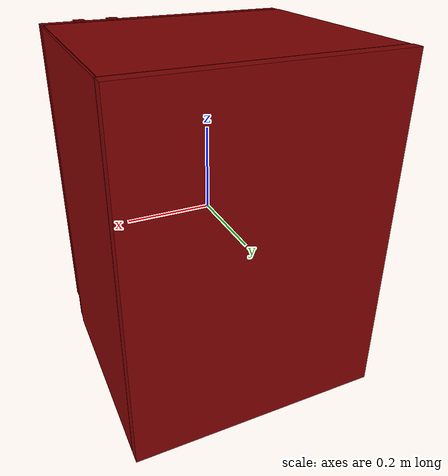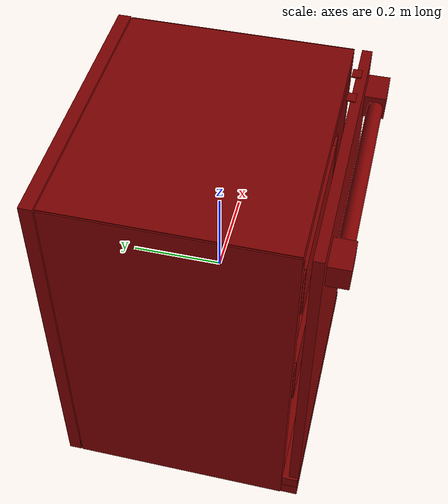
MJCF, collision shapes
<?xml version='1.0' encoding='UTF-8'?>
<mujoco model="model">
  <option timestep="0.002" gravity="0.0 0.0 -9.81"/>
  <compiler angle="radian"/>
  <asset>
    <mesh file="visuals/button_lock.obj" name="button_lock_vis"/>
    <mesh file="visuals/button_power.obj" name="button_power_vis"/>
    <mesh file="visuals/Body001.obj" name="Body001_vis"/>
    <mesh file="visuals/Handle001.obj" name="Handle001_vis"/>
    <mesh file="visuals/door.obj" name="door_vis"/>
    <mesh file="visuals/rack0.obj" name="rack0_vis"/>
    <mesh file="visuals/rack1.obj" name="rack1_vis"/>
    <texture file="visuals/T_BC001.png" name="Body001_material" type="2d"/>
    <material name="Body001_material" rgba="1 1 1 1.0" texture="Body001_material" shininess="0.1" specular="4"/>
    <texture file="visuals/T_BC001.png" name="door_material" type="2d"/>
    <material name="door_material" rgba="1 1 1 1.0" texture="door_material" shininess="0.1" specular="0.3"/>
    <texture file="visuals/T_BC001.png" name="button_lock_material" type="2d"/>
    <material name="button_lock_material" rgba="1 1 1 1.0" texture="button_lock_material" shininess="0.4472135901451111" specular="0.3103448502657381"/>
    <texture file="visuals/T_BC001.png" name="button_power_material" type="2d"/>
    <material name="button_power_material" rgba="1 1 1 1.0" texture="button_power_material" shininess="0.4472135901451111" specular="0.3103448502657381"/>
    <texture file="visuals/T_BC001.png" name="Handle001_material" type="2d"/>
    <material name="Handle001_material" rgba="1 1 1 1.0" texture="Handle001_material" shininess="0.1" specular="4"/>
    <texture file="visuals/T_BC001.png" name="rack0_material" type="2d"/>
    <material name="rack0_material" rgba="1 1 1 1.0" texture="rack0_material" shininess="0.1" specular="4"/>
    <texture file="visuals/T_BC001.png" name="rack1_material" type="2d"/>
    <material name="rack1_material" rgba="1 1 1 1.0" texture="rack1_material" shininess="0.1" specular="4"/>
  </asset>
  <default>
    <default class="visual">
      <geom conaffinity="0" contype="0" group="1" type="mesh"/>
    </default>
    <default class="collision">
      <geom group="0" rgba="0.5 0 0 0.5"/>
    </default>
    <default class="spawn">
      <geom group="0" rgba="1 1 1 0.5" contype="0" conaffinity="0"/>
      <site group="0" rgba="1 1 1 0.5"/>
    </default>
    <default class="region">
      <geom group="1" conaffinity="0" contype="0" rgba="0 1 0 0"/>
    </default>
  </default>
  <worldbody>
    <body>
      <body name="object">
        <geom mesh="Body001_vis" type="mesh" solimp="0.998 0.998 0.001" solref="0.001 1" friction="0.95 0.3 0.1" class="visual" material="Body001_material"/>
        <geom class="collision" type="box" pos="-0.000668 0.025791 0.394278" size="0.30072736740112305 0.24492543935775757 0.017082300037145615" quat="1.0 0.0 0.0 0.0"/>
        <geom class="collision" type="box" pos="0.000001 0.287725 -0.003436" size="0.3044951558113098 0.014143624342978 0.41479599475860596" quat="1.0 0.0 0.0 0.0"/>
        <geom class="collision" type="box" pos="-0.000668 0.013292 -0.401960" size="0.3022187650203705 0.2705151438713074 0.016272570937871933" quat="1.0 0.0 0.0 0.0"/>
        <geom class="collision" type="box" pos="0.288223 0.025791 -0.004396" size="0.01627330854535103 0.24492540955543518 0.41383621096611023" quat="1.0 0.0 0.0 0.0"/>
        <geom class="collision" type="box" pos="-0.288222 0.025791 -0.004396" size="0.016272010281682014 0.24492540955543518 0.41383621096611023" quat="1.0 0.0 0.0 0.0"/>
        <geom class="collision" type="box" pos="-0.262166 0.043251 0.090746" size="0.011655692011117935 0.20158706605434418 0.004790700972080231" quat="1.0 0.0 0.0 0.0"/>
        <geom class="collision" type="box" pos="-0.262166 0.043251 -0.219163" size="0.011655692011117935 0.20158706605434418 0.004790700972080231" quat="1.0 0.0 0.0 0.0"/>
        <geom class="collision" type="box" pos="0.261809 0.043251 -0.219163" size="0.011655692011117935 0.20158706605434418 0.004790700972080231" quat="1.0 0.0 0.0 0.0"/>
        <geom class="collision" type="box" pos="0.261809 0.043251 0.090746" size="0.011655692011117935 0.20158706605434418 0.004790700972080231" quat="1.0 0.0 0.0 0.0"/>
        <geom class="collision" type="box" pos="-0.000668 -0.237729 -0.371776" size="0.30220484733581543 0.017823606729507446 0.01627206616103649" quat="1.0 0.0 0.0 0.0"/>
        <body name="door">
          <joint axis="1.0 0.0 0.0" pos="0.000000 -0.258970 -0.357056" limited="true" name="door_joint" range="0.0 0.4886921905584123" type="hinge" damping="1" frictionloss="1" armature=".01" stiffness="0.05"/>
          <geom mesh="door_vis" type="mesh" solimp="0.998 0.998 0.001" solref="0.001 1" friction="0.95 0.3 0.1" class="visual" material="door_material"/>
          <geom class="collision" type="cylinder" pos="-0.000797 -0.283457 0.342964" size="0.016290415078401566 0.2060755044221878" quat="0.7071068286895752 -0.0 0.7071067690849304 0.0" name="door_handle_main"/>
          <geom class="collision" type="box" pos="0.000000 -0.246408 0.034732" size="0.3044874966144562 0.010814973153173923 0.3750077784061432" quat="1.0 0.0 0.0 0.0" name="door_main"/>
          <body name="button_lock">
            <joint axis="0.0 0.0 -1.0" pos="0.217493 -0.236426 0.411807" limited="true" name="button_lock_joint" range="0.0 0.001" type="slide" damping="1" frictionloss="1" armature=".01" stiffness="0.05" springref="-1.5"/>
            <geom mesh="button_lock_vis" type="mesh" solimp="0.998 0.998 0.001" solref="0.001 1" friction="0.95 0.3 0.1" class="visual" material="button_lock_material"/>
            <geom class="collision" type="box" pos="0.217240 -0.236645 0.413273" size="0.012506443075835705 0.009491091594099998 0.0013472838327288628" quat="1.0 0.0 0.0 0.0"/>
          </body>
          <body name="button_power">
            <joint axis="0.0 0.0 -1.0" pos="0.139561 -0.236426 0.411807" limited="true" name="button_power_joint" range="0.0 0.001" type="slide" damping="1" frictionloss="1" armature=".01" stiffness="0.05" springref="-1.5"/>
            <geom mesh="button_power_vis" type="mesh" solimp="0.998 0.998 0.001" solref="0.001 1" friction="0.95 0.3 0.1" class="visual" material="button_power_material"/>
            <geom class="collision" type="box" pos="0.139713 -0.236645 0.413266" size="0.012506443075835705 0.009491091594099998 0.0013543468667194247" quat="1.0 0.0 0.0 0.0"/>
          </body>
          <body name="Handle001">
            <geom mesh="Handle001_vis" type="mesh" solimp="0.998 0.998 0.001" solref="0.001 1" friction="0.95 0.3 0.1" class="visual" material="Handle001_material"/>
            <geom class="collision" type="box" pos="-0.239763 -0.281283 0.344071" size="0.03679583966732025 0.022475868463516235 0.025957245379686356" quat="1.0 0.0 0.0 0.0"/>
            <geom class="collision" type="box" pos="0.240376 -0.281283 0.344071" size="0.03679583966732025 0.022475913166999817 0.025957245379686356" quat="1.0 0.0 0.0 0.0"/>
          </body>
        </body>
        <body name="rack0">
          <geom class="region" name="reg_rack0" type="box" pos="-0.0036790000000000017 0.026430999999999996 -0.1339365" size="0.24296600000000002 0.231271 0.0656955"/>
          <joint axis="0.0 -1.0 0.0" pos="-0.002740 0.026020 -0.138280" limited="true" name="rack0_joint" range="0.0 0.08" type="slide" damping="1" frictionloss="1" armature=".01" stiffness="0.05"/>
          <geom mesh="rack0_vis" type="mesh" solimp="0.998 0.998 0.001" solref="0.001 1" friction="0.95 0.3 0.1" class="visual" material="rack0_material"/>
          <geom class="collision" type="box" pos="-0.000868 -0.208925 -0.135254" size="0.1814403384923935 0.005505991168320179 0.06960348039865494" quat="1.0 0.0 0.0 0.0"/>
          <geom class="collision" type="box" pos="-0.237950 -0.181010 -0.113263" size="0.04608502611517906 0.034626297652721405 0.00293213059194386" quat="0.6703308820724487 0.22506999969482422 -0.6703308820724487 0.22506998479366302"/>
          <geom class="collision" type="box" pos="0.000426 -0.011115 -0.203319" size="0.18228940665721893 0.19769148528575897 0.0029320844914764166" quat="1.0 0.0 0.0 0.0"/>
          <geom class="collision" type="box" pos="-0.260475 0.051714 -0.113543" size="0.005374429281800985 0.20445707440376282 0.04580455273389816" quat="1.0 0.0 0.0 0.0"/>
          <geom class="collision" type="box" pos="0.025369 -0.160264 -0.170398" size="0.03280595690011978 0.17612867057323456 0.0015254621393978596" quat="0.3746052086353302 0.599725604057312 -0.5997262597084045 0.3746044933795929"/>
          <geom class="collision" type="box" pos="0.025369 -0.037804 -0.171008" size="0.03280595690011978 0.17612867057323456 0.0015254623722285032" quat="0.5994250774383545 0.3750862181186676 -0.37508624792099 0.5994248986244202"/>
          <geom class="collision" type="box" pos="0.025369 0.086454 -0.170841" size="0.03280595690011978 0.17612867057323456 0.0015254623722285032" quat="0.6009702086448669 0.372605562210083 -0.3726055920124054 0.6009700298309326"/>
          <geom class="collision" type="box" pos="0.025369 0.174369 -0.168034" size="0.03437110036611557 0.17612867057323456 0.0015254623722285032" quat="0.4398217499256134 0.5536757111549377 -0.5536763072013855 0.4398210644721985"/>
          <geom class="collision" type="box" pos="0.166839 0.259764 -0.135399" size="0.09084472060203552 0.005374431144446135 0.06556551903486252" quat="1.0 0.0 0.0 0.0"/>
          <geom class="collision" type="box" pos="0.061125 0.251191 -0.135399" size="0.06556551903486252 0.018843065947294235 0.005374422296881676" quat="0.6344218254089355 0.3122643232345581 0.6344217658042908 -0.3122642934322357"/>
          <geom class="collision" type="box" pos="-0.056612 0.251191 -0.135399" size="0.06556551903486252 0.018843065947294235 0.005374422296881676" quat="0.6344218254089355 0.3122643232345581 -0.6344217658042908 0.3122642934322357"/>
          <geom class="collision" type="box" pos="-0.255497 0.051327 -0.168559" size="0.014618505723774433 0.20484375953674316 0.004902960266917944" quat="0.482354998588562 -5.884752596330145e-08 -0.8759758472442627 -8.52907220405541e-08"/>
          <geom class="collision" type="box" pos="0.001922 0.240326 -0.135399" size="0.046423185616731644 0.005374431610107422 0.06556552648544312" quat="1.0 0.0 0.0 0.0"/>
          <geom class="collision" type="box" pos="-0.169703 0.259764 -0.135399" size="0.0982215404510498 0.005374431610107422 0.06556552648544312" quat="1.0 0.0 0.0 0.0"/>
          <geom class="collision" type="box" pos="0.233105 -0.179338 -0.070217" size="0.0032838964834809303 0.03610019385814667 0.005019412841647863" quat="0.6783162951469421 0.19971753656864166 0.6783161759376526 -0.19971750676631927"/>
          <geom class="collision" type="box" pos="0.234146 -0.180547 -0.113263" size="0.04608502611517906 0.034626297652721405 0.00293213059194386" quat="0.6814671158790588 0.18868668377399445 0.6814669966697693 -0.18868663907051086"/>
          <geom class="collision" type="box" pos="0.182184 -0.210948 -0.113263" size="0.029871802777051926 0.003071033861488104 0.04608503356575966" quat="1.0 0.0 0.0 0.0"/>
          <geom class="collision" type="box" pos="0.232281 -0.177914 -0.135290" size="0.015675075352191925 0.039374999701976776 0.002932131290435791" quat="0.6765477657318115 0.20562869310379028 0.6765477061271667 -0.2056286782026291"/>
          <geom class="collision" type="box" pos="0.247289 0.052207 -0.191586" size="0.004977009259164333 0.20441877841949463 0.014618507586419582" quat="1.0 0.0 0.0 0.0"/>
          <geom class="collision" type="box" pos="0.254016 0.052207 -0.168559" size="0.014618505723774433 0.20441877841949463 0.004902959801256657" quat="0.4823552072048187 -5.8847568595865596e-08 0.8759757280349731 8.529075756769089e-08"/>
          <geom class="collision" type="box" pos="0.258994 0.052594 -0.113543" size="0.005374429281800985 0.20403210818767548 0.04580455273389816" quat="1.0 0.0 0.0 0.0"/>
          <geom class="collision" type="box" pos="-0.248770 0.051327 -0.191586" size="0.004977009259164333 0.20484375953674316 0.014618507586419582" quat="1.0 0.0 0.0 0.0"/>
          <geom class="collision" type="box" pos="0.263285 0.052594 -0.070217" size="0.005019418429583311 0.20403210818767548 0.003283897414803505" quat="1.0 0.0 0.0 0.0"/>
          <geom class="collision" type="box" pos="0.167269 0.261306 -0.070217" size="0.10065902024507523 0.005019412375986576 0.0032839160412549973" quat="1.0 0.0 0.0 0.0"/>
          <geom class="collision" type="box" pos="0.056217 0.249631 -0.070217" size="0.0032838964834809303 0.018516186624765396 0.0050193932838737965" quat="0.2988363206386566 0.6408563852310181 -0.29883629083633423 0.6408563256263733"/>
          <geom class="collision" type="box" pos="-0.056612 0.250748 -0.070217" size="0.0032838964834809303 0.018516184762120247 0.005019392818212509" quat="0.6408563852310181 0.2988363206386566 -0.6408563256263733 0.29883629083633423"/>
          <geom class="collision" type="box" pos="0.002316 0.239911 -0.070217" size="0.046150531619787216 0.005019402131438255 0.003283905563876033" quat="1.0 0.0 0.0 0.0"/>
          <geom class="collision" type="box" pos="-0.167447 0.261306 -0.070217" size="0.10065902024507523 0.005019412375986576 0.0032839160412549973" quat="1.0 0.0 0.0 0.0"/>
          <geom class="collision" type="box" pos="-0.264765 0.052859 -0.070217" size="0.005019418429583311 0.20560257136821747 0.003283897414803505" quat="1.0 0.0 0.0 0.0"/>
          <geom class="collision" type="box" pos="-0.228414 -0.178793 -0.134630" size="0.015675075352191925 0.03937499597668648 0.0029321310576051474" quat="0.661539614200592 0.24973070621490479 -0.6615394949913025 0.24973064661026"/>
          <geom class="collision" type="box" pos="-0.185174 -0.210948 -0.113263" size="0.03366275504231453 0.0030710340943187475 0.04608503356575966" quat="1.0 0.0 0.0 0.0"/>
          <geom class="collision" type="box" pos="0.001371 0.051391 -0.203319" size="0.25194963812828064 0.20514939725399017 0.0029320844914764166" quat="1.0 0.0 0.0 0.0"/>
          <geom class="collision" type="box" pos="-0.210873 0.038145 -0.085365" size="0.048206619918346405 0.18564490973949432 0.003815657226368785" quat="0.9674090147018433 -1.701110008411888e-08 -0.2532189190387726 3.096777945188478e-08"/>
          <geom class="collision" type="cylinder" pos="-0.250336 -0.094637 -0.199512" size="0.014364920556545258 0.007440432906150818" quat="0.7071068286895752 -4.750302551315144e-08 -0.7071067094802856 -4.7503014855010406e-08"/>
          <geom class="collision" type="cylinder" pos="-0.250336 0.182739 -0.199512" size="0.014364920556545258 0.007440432906150818" quat="0.7071068286895752 -4.750302551315144e-08 -0.7071067094802856 -4.7503014855010406e-08"/>
          <geom class="collision" type="cylinder" pos="0.250788 -0.094637 -0.199512" size="0.014364920556545258 0.007440432906150818" quat="0.7071068286895752 -4.750302551315144e-08 -0.7071067094802856 -4.7503014855010406e-08"/>
          <geom class="collision" type="cylinder" pos="0.250789 0.182739 -0.199512" size="0.014364920556545258 0.007440432906150818" quat="0.7071068286895752 -4.750302551315144e-08 -0.7071067094802856 -4.7503014855010406e-08"/>
        </body>
        <body name="rack1">
          <geom class="region" name="reg_rack1" type="box" pos="-0.0036790000000000017 0.026430999999999996 0.1755565" size="0.24296600000000002 0.231271 0.06572449999999999"/>
          <joint axis="0.0 -1.0 0.0" pos="-0.002740 0.026020 0.171279" limited="true" name="rack1_joint" range="0.0 0.25" type="slide" damping="1" frictionloss="1" armature=".01" stiffness="0.05"/>
          <geom mesh="rack1_vis" type="mesh" solimp="0.998 0.998 0.001" solref="0.001 1" friction="0.95 0.3 0.1" class="visual" material="rack1_material"/>
          <geom class="collision" type="box" pos="-0.000868 -0.208925 0.174306" size="0.1814403384923935 0.005505991168320179 0.06960348039865494" quat="1.0 0.0 0.0 0.0"/>
          <geom class="collision" type="box" pos="-0.237950 -0.181010 0.196297" size="0.04608502611517906 0.034626297652721405 0.00293213059194386" quat="0.6703308820724487 0.22506999969482422 -0.6703308820724487 0.22506998479366302"/>
          <geom class="collision" type="box" pos="0.000426 -0.011115 0.106241" size="0.18228940665721893 0.19769148528575897 0.0029320844914764166" quat="1.0 0.0 0.0 0.0"/>
          <geom class="collision" type="box" pos="-0.260475 0.051714 0.196017" size="0.005374429281800985 0.20445707440376282 0.04580455273389816" quat="1.0 0.0 0.0 0.0"/>
          <geom class="collision" type="box" pos="0.025369 -0.160264 0.139161" size="0.03280595690011978 0.17612867057323456 0.0015254621393978596" quat="0.3746052086353302 0.599725604057312 -0.5997262597084045 0.3746044933795929"/>
          <geom class="collision" type="box" pos="0.025369 -0.037804 0.138551" size="0.03280595690011978 0.17612867057323456 0.0015254623722285032" quat="0.5994250774383545 0.3750862181186676 -0.37508624792099 0.5994248986244202"/>
          <geom class="collision" type="box" pos="0.025369 0.086454 0.138719" size="0.03280595690011978 0.17612867057323456 0.0015254623722285032" quat="0.6009702086448669 0.372605562210083 -0.3726055920124054 0.6009700298309326"/>
          <geom class="collision" type="box" pos="0.025369 0.174369 0.141525" size="0.03437110036611557 0.17612867057323456 0.0015254623722285032" quat="0.4398217499256134 0.5536757111549377 -0.5536763072013855 0.4398210644721985"/>
          <geom class="collision" type="box" pos="0.166839 0.259764 0.174161" size="0.09084472060203552 0.005374431144446135 0.06556551903486252" quat="1.0 0.0 0.0 0.0"/>
          <geom class="collision" type="box" pos="0.061125 0.251191 0.174161" size="0.06556551903486252 0.018843065947294235 0.005374422296881676" quat="0.6344218254089355 0.3122643232345581 0.6344217658042908 -0.3122642934322357"/>
          <geom class="collision" type="box" pos="-0.056612 0.251191 0.174161" size="0.06556551903486252 0.018843065947294235 0.005374422296881676" quat="0.6344218254089355 0.3122643232345581 -0.6344217658042908 0.3122642934322357"/>
          <geom class="collision" type="box" pos="-0.255497 0.051327 0.141001" size="0.014618505723774433 0.20484375953674316 0.004902960266917944" quat="0.482354998588562 -5.884752596330145e-08 -0.8759758472442627 -8.52907220405541e-08"/>
          <geom class="collision" type="box" pos="0.001922 0.240326 0.174161" size="0.046423185616731644 0.005374431610107422 0.06556552648544312" quat="1.0 0.0 0.0 0.0"/>
          <geom class="collision" type="box" pos="-0.169703 0.259764 0.174161" size="0.0982215404510498 0.005374431610107422 0.06556552648544312" quat="1.0 0.0 0.0 0.0"/>
          <geom class="collision" type="box" pos="0.233105 -0.179338 0.239343" size="0.0032838964834809303 0.03610019385814667 0.005019412841647863" quat="0.6783162951469421 0.19971753656864166 0.6783161759376526 -0.19971750676631927"/>
          <geom class="collision" type="box" pos="0.234146 -0.180547 0.196297" size="0.04608502611517906 0.034626297652721405 0.00293213059194386" quat="0.6814671158790588 0.18868668377399445 0.6814669966697693 -0.18868663907051086"/>
          <geom class="collision" type="box" pos="0.182184 -0.210948 0.196297" size="0.029871802777051926 0.003071033861488104 0.04608503356575966" quat="1.0 0.0 0.0 0.0"/>
          <geom class="collision" type="box" pos="0.232281 -0.177914 0.174270" size="0.015675075352191925 0.039374999701976776 0.002932131290435791" quat="0.6765477657318115 0.20562869310379028 0.6765477061271667 -0.2056286782026291"/>
          <geom class="collision" type="box" pos="0.247289 0.052207 0.117974" size="0.004977009259164333 0.20441877841949463 0.014618507586419582" quat="1.0 0.0 0.0 0.0"/>
          <geom class="collision" type="box" pos="0.254016 0.052207 0.141001" size="0.014618505723774433 0.20441877841949463 0.004902959801256657" quat="0.4823552072048187 -5.8847568595865596e-08 0.8759757280349731 8.529075756769089e-08"/>
          <geom class="collision" type="box" pos="0.258994 0.052594 0.196017" size="0.005374429281800985 0.20403210818767548 0.04580455273389816" quat="1.0 0.0 0.0 0.0"/>
          <geom class="collision" type="box" pos="-0.248770 0.051327 0.117974" size="0.004977009259164333 0.20484375953674316 0.014618507586419582" quat="1.0 0.0 0.0 0.0"/>
          <geom class="collision" type="box" pos="0.263285 0.052594 0.239343" size="0.005019418429583311 0.20403210818767548 0.003283897414803505" quat="1.0 0.0 0.0 0.0"/>
          <geom class="collision" type="box" pos="0.167269 0.261306 0.239343" size="0.10065902024507523 0.005019412375986576 0.0032839160412549973" quat="1.0 0.0 0.0 0.0"/>
          <geom class="collision" type="box" pos="0.056217 0.249631 0.239343" size="0.0032838964834809303 0.018516186624765396 0.0050193932838737965" quat="0.2988363206386566 0.6408563852310181 -0.29883629083633423 0.6408563256263733"/>
          <geom class="collision" type="box" pos="-0.056612 0.250748 0.239343" size="0.0032838964834809303 0.018516184762120247 0.005019392818212509" quat="0.6408563852310181 0.2988363206386566 -0.6408563256263733 0.29883629083633423"/>
          <geom class="collision" type="box" pos="0.002316 0.239911 0.239343" size="0.046150531619787216 0.005019402131438255 0.003283905563876033" quat="1.0 0.0 0.0 0.0"/>
          <geom class="collision" type="box" pos="-0.167447 0.261306 0.239343" size="0.10065902024507523 0.005019412375986576 0.0032839160412549973" quat="1.0 0.0 0.0 0.0"/>
          <geom class="collision" type="box" pos="-0.264765 0.052859 0.239343" size="0.005019418429583311 0.20560257136821747 0.003283897414803505" quat="1.0 0.0 0.0 0.0"/>
          <geom class="collision" type="box" pos="-0.228414 -0.178793 0.174930" size="0.015675075352191925 0.03937499597668648 0.0029321310576051474" quat="0.661539614200592 0.24973070621490479 -0.6615394949913025 0.24973064661026"/>
          <geom class="collision" type="box" pos="-0.185174 -0.210948 0.196297" size="0.03366275504231453 0.0030710340943187475 0.04608503356575966" quat="1.0 0.0 0.0 0.0"/>
          <geom class="collision" type="box" pos="0.001371 0.051391 0.106241" size="0.25194963812828064 0.20514939725399017 0.0029320844914764166" quat="1.0 0.0 0.0 0.0"/>
          <geom class="collision" type="box" pos="-0.210873 0.038145 0.224195" size="0.048206619918346405 0.18564490973949432 0.003815657226368785" quat="0.9674090147018433 -1.701110008411888e-08 -0.2532189190387726 3.096777945188478e-08"/>
          <geom class="collision" type="cylinder" pos="-0.250336 -0.094637 0.110048" size="0.014364920556545258 0.007440432906150818" quat="0.7071068286895752 -4.750302551315144e-08 -0.7071067094802856 -4.7503014855010406e-08"/>
          <geom class="collision" type="cylinder" pos="-0.250336 0.182739 0.110048" size="0.014364920556545258 0.007440432906150818" quat="0.7071068286895752 -4.750302551315144e-08 -0.7071067094802856 -4.7503014855010406e-08"/>
          <geom class="collision" type="cylinder" pos="0.250788 -0.094637 0.110048" size="0.014364920556545258 0.007440432906150818" quat="0.7071068286895752 -4.750302551315144e-08 -0.7071067094802856 -4.7503014855010406e-08"/>
          <geom class="collision" type="cylinder" pos="0.250789 0.182739 0.110048" size="0.014364920556545258 0.007440432906150818" quat="0.7071068286895752 -4.750302551315144e-08 -0.7071067094802856 -4.7503014855010406e-08"/>
        </body>
        <geom class="region" name="reg_int" type="box" pos="-0.0003220000000000167 0.02865999999999999 -0.0040999999999999925" size="0.271861 0.244995 0.380986"/>
        <geom class="region" name="reg_main" type="box" pos="0.0 0.02232300000000001 -0.0034359999999999946" size="0.304494 0.27954599999999996 0.414796"/>
      </body>
    </body>
  </worldbody>
  <actuator>
    <motor name="door_joint_actuator" joint="door_joint" gear="200"/>
    <motor name="rack0_joint_actuator" joint="rack0_joint" gear="10"/>
    <motor name="rack1_joint_actuator" joint="rack1_joint" gear="10"/>
    <motor name="button_lock_joint_actuator" joint="button_lock_joint" gear="0.5"/>
    <motor name="button_power_joint_actuator" joint="button_power_joint" gear="0.5"/>
  </actuator>
</mujoco>
